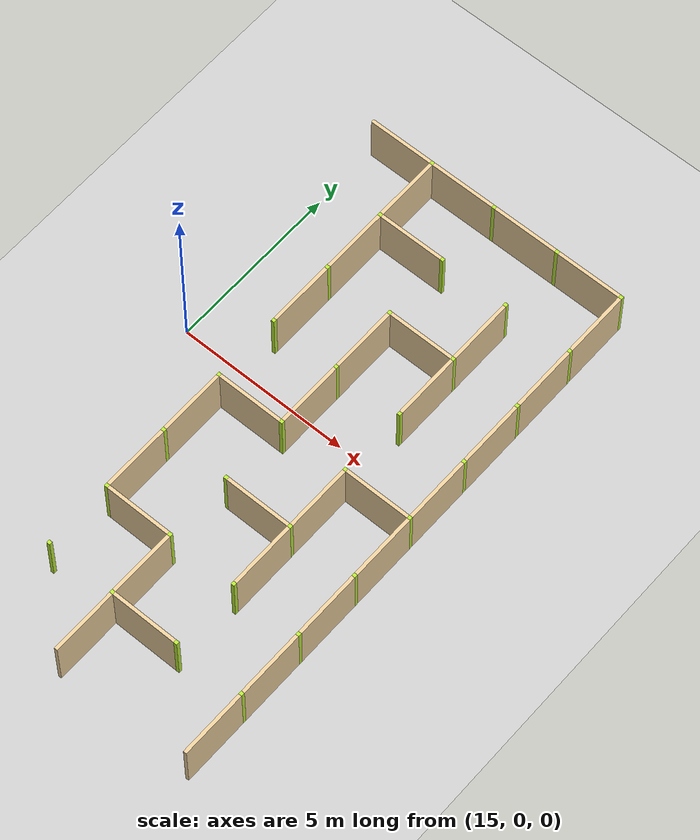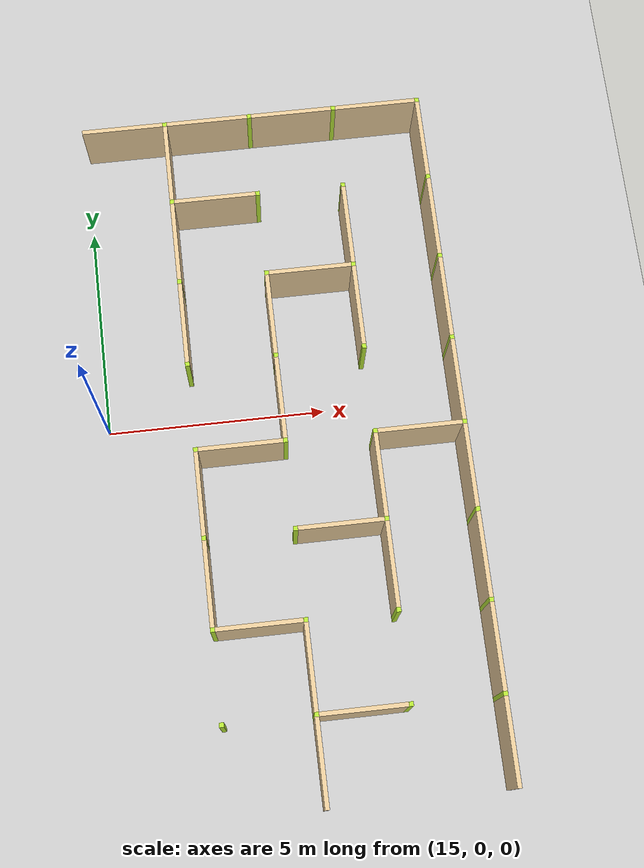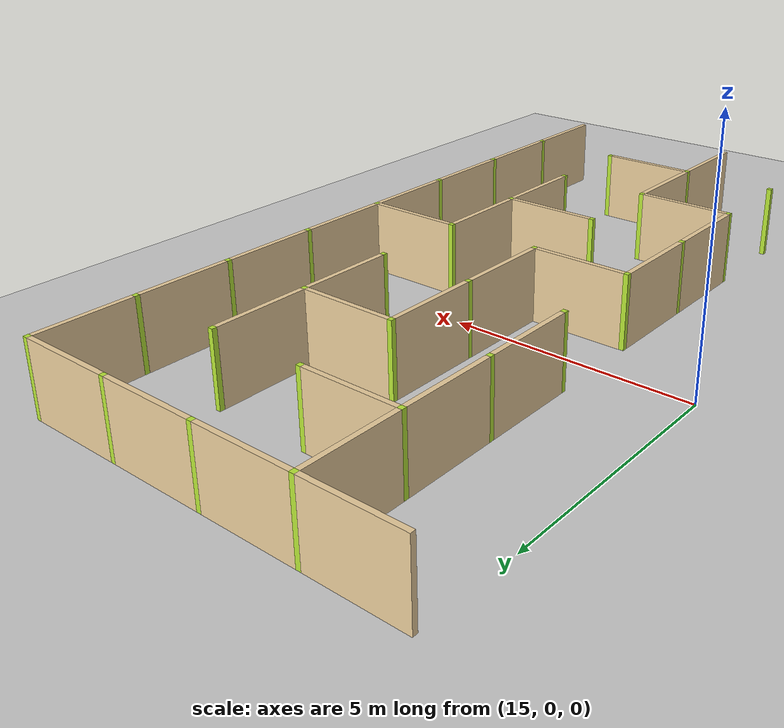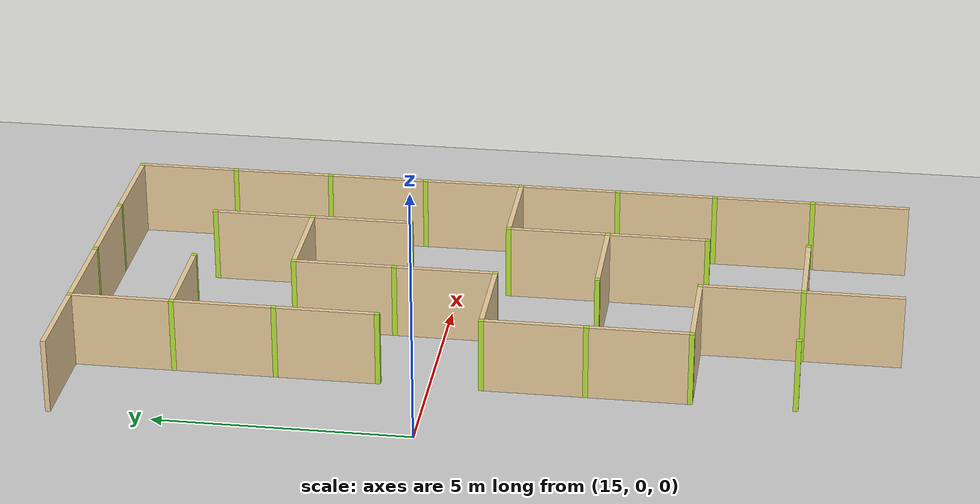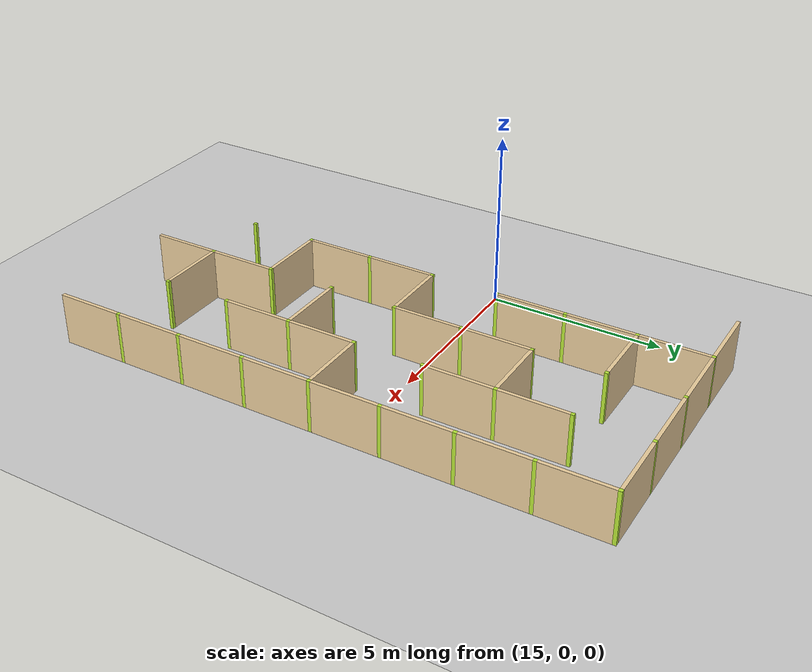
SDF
<sdf version="1.4">
 <world name="maze_world">
  <model name="ground">
   <static>true</static>
   <link name="ground_link">
    <collision name="collision1"><geometry><plane><normal>0 0 1</normal></plane></geometry></collision>
    <visual name="visual1"><geometry><plane><normal>0 0 1</normal><size>100 100</size></plane></geometry></visual>
   </link>
  </model>
  <model name="Untitled">
   <link name="Wall_11_0_h">
    <collision name="Wall_0_Collision">
     <geometry><box><size>1.9 0.1 1.5</size></box></geometry>
     <pose>0 0 0.75 0 -0 0</pose>
    </collision>
    <visual name="Wall_0_Visual">
     <pose>0 0 0.75 0 -0 0</pose>
     <geometry><box><size>1.9 0.1 1.5</size></box></geometry>
     <material>
      <script><uri>file://media/materials/scripts/gazebo.material</uri><name>Gazebo/Grey</name></script>
      <ambient>0.921569 0.807843 0.615686 1</ambient>
     </material>
     <meta><layer>0</layer></meta>
    </visual>
    <pose>16.0 7 0 0 -0 0</pose>
    <sensor name="my_contact" type="contact">
     <contact><collision>box_collision</collision><topic>/rover_collision</topic></contact>
    </sensor>
   </link>
   <link name="Wall_12_0_h">
    <collision name="Wall_0_Collision">
     <geometry><box><size>1.9 0.1 1.5</size></box></geometry>
     <pose>0 0 0.75 0 -0 0</pose>
    </collision>
    <visual name="Wall_0_Visual">
     <pose>0 0 0.75 0 -0 0</pose>
     <geometry><box><size>1.9 0.1 1.5</size></box></geometry>
     <material>
      <script><uri>file://media/materials/scripts/gazebo.material</uri><name>Gazebo/Grey</name></script>
      <ambient>0.921569 0.807843 0.615686 1</ambient>
     </material>
     <meta><layer>0</layer></meta>
    </visual>
    <pose>18.0 7 0 0 -0 0</pose>
    <sensor name="my_contact" type="contact">
     <contact><collision>box_collision</collision><topic>/rover_collision</topic></contact>
    </sensor>
   </link>
   <link name="Wall_12_0_v">
    <collision name="Wall_0_Collision">
     <geometry><box><size>1.9 0.1 1.5</size></box></geometry>
     <pose>0 0 0.75 0 -0 0</pose>
    </collision>
    <visual name="Wall_0_Visual">
     <pose>0 0 0.75 0 -0 0</pose>
     <geometry><box><size>1.9 0.1 1.5</size></box></geometry>
     <material>
      <script><uri>file://media/materials/scripts/gazebo.material</uri><name>Gazebo/Grey</name></script>
      <ambient>0.921569 0.807843 0.615686 1</ambient>
     </material>
     <meta><layer>0</layer></meta>
    </visual>
    <pose>17 6.0 0 0 -0 1.5708</pose>
    <sensor name="my_contact" type="contact">
     <contact><collision>box_collision</collision><topic>/rover_collision</topic></contact>
    </sensor>
   </link>
   <link name="Joint_17_7">
    <collision name="Wall_2_Collision">
     <geometry><box><size>0.1 0.1 1.5</size></box></geometry>
     <pose>0 0 0.75 0 -0 0</pose>
    </collision>
    <visual name="Wall_2_Visual">
     <pose>0 0 0.75 0 -0 0</pose>
     <geometry><box><size>0.1 0.1 1.5</size></box></geometry>
     <material>
      <script><uri>file://media/materials/scripts/gazebo.material</uri><name>Gazebo/Grey</name></script>
      <ambient>0.721569 0.907843 0.215686 1</ambient>
     </material>
     <meta><layer>0</layer></meta>
    </visual>
    <pose>17 7 0 0 -0 0</pose>
    <sensor name="my_contact" type="contact">
     <contact><collision>box_collision</collision><topic>/rover_collision</topic></contact>
    </sensor>
   </link>
   <link name="Wall_13_0_h">
    <collision name="Wall_0_Collision">
     <geometry><box><size>1.9 0.1 1.5</size></box></geometry>
     <pose>0 0 0.75 0 -0 0</pose>
    </collision>
    <visual name="Wall_0_Visual">
     <pose>0 0 0.75 0 -0 0</pose>
     <geometry><box><size>1.9 0.1 1.5</size></box></geometry>
     <material>
      <script><uri>file://media/materials/scripts/gazebo.material</uri><name>Gazebo/Grey</name></script>
      <ambient>0.921569 0.807843 0.615686 1</ambient>
     </material>
     <meta><layer>0</layer></meta>
    </visual>
    <pose>20.0 7 0 0 -0 0</pose>
    <sensor name="my_contact" type="contact">
     <contact><collision>box_collision</collision><topic>/rover_collision</topic></contact>
    </sensor>
   </link>
   <link name="Joint_19_7">
    <collision name="Wall_2_Collision">
     <geometry><box><size>0.1 0.1 1.5</size></box></geometry>
     <pose>0 0 0.75 0 -0 0</pose>
    </collision>
    <visual name="Wall_2_Visual">
     <pose>0 0 0.75 0 -0 0</pose>
     <geometry><box><size>0.1 0.1 1.5</size></box></geometry>
     <material>
      <script><uri>file://media/materials/scripts/gazebo.material</uri><name>Gazebo/Grey</name></script>
      <ambient>0.721569 0.907843 0.215686 1</ambient>
     </material>
     <meta><layer>0</layer></meta>
    </visual>
    <pose>19 7 0 0 -0 0</pose>
    <sensor name="my_contact" type="contact">
     <contact><collision>box_collision</collision><topic>/rover_collision</topic></contact>
    </sensor>
   </link>
   <link name="Wall_14_0_h">
    <collision name="Wall_0_Collision">
     <geometry><box><size>1.9 0.1 1.5</size></box></geometry>
     <pose>0 0 0.75 0 -0 0</pose>
    </collision>
    <visual name="Wall_0_Visual">
     <pose>0 0 0.75 0 -0 0</pose>
     <geometry><box><size>1.9 0.1 1.5</size></box></geometry>
     <material>
      <script><uri>file://media/materials/scripts/gazebo.material</uri><name>Gazebo/Grey</name></script>
      <ambient>0.921569 0.807843 0.615686 1</ambient>
     </material>
     <meta><layer>0</layer></meta>
    </visual>
    <pose>22.0 7 0 0 -0 0</pose>
    <sensor name="my_contact" type="contact">
     <contact><collision>box_collision</collision><topic>/rover_collision</topic></contact>
    </sensor>
   </link>
   <link name="Joint_21_7">
    <collision name="Wall_2_Collision">
     <geometry><box><size>0.1 0.1 1.5</size></box></geometry>
     <pose>0 0 0.75 0 -0 0</pose>
    </collision>
    <visual name="Wall_2_Visual">
     <pose>0 0 0.75 0 -0 0</pose>
     <geometry><box><size>0.1 0.1 1.5</size></box></geometry>
     <material>
      <script><uri>file://media/materials/scripts/gazebo.material</uri><name>Gazebo/Grey</name></script>
      <ambient>0.721569 0.907843 0.215686 1</ambient>
     </material>
     <meta><layer>0</layer></meta>
    </visual>
    <pose>21 7 0 0 -0 0</pose>
    <sensor name="my_contact" type="contact">
     <contact><collision>box_collision</collision><topic>/rover_collision</topic></contact>
    </sensor>
   </link>
   <link name="Wall_15_0_v">
    <collision name="Wall_0_Collision">
     <geometry><box><size>1.9 0.1 1.5</size></box></geometry>
     <pose>0 0 0.75 0 -0 0</pose>
    </collision>
    <visual name="Wall_0_Visual">
     <pose>0 0 0.75 0 -0 0</pose>
     <geometry><box><size>1.9 0.1 1.5</size></box></geometry>
     <material>
      <script><uri>file://media/materials/scripts/gazebo.material</uri><name>Gazebo/Grey</name></script>
      <ambient>0.921569 0.807843 0.615686 1</ambient>
     </material>
     <meta><layer>0</layer></meta>
    </visual>
    <pose>23 6.0 0 0 -0 1.5708</pose>
    <sensor name="my_contact" type="contact">
     <contact><collision>box_collision</collision><topic>/rover_collision</topic></contact>
    </sensor>
   </link>
   <link name="Joint_23_7">
    <collision name="Wall_2_Collision">
     <geometry><box><size>0.1 0.1 1.5</size></box></geometry>
     <pose>0 0 0.75 0 -0 0</pose>
    </collision>
    <visual name="Wall_2_Visual">
     <pose>0 0 0.75 0 -0 0</pose>
     <geometry><box><size>0.1 0.1 1.5</size></box></geometry>
     <material>
      <script><uri>file://media/materials/scripts/gazebo.material</uri><name>Gazebo/Grey</name></script>
      <ambient>0.721569 0.907843 0.215686 1</ambient>
     </material>
     <meta><layer>0</layer></meta>
    </visual>
    <pose>23 7 0 0 -0 0</pose>
    <sensor name="my_contact" type="contact">
     <contact><collision>box_collision</collision><topic>/rover_collision</topic></contact>
    </sensor>
   </link>
   <link name="Wall_12_1_h">
    <collision name="Wall_0_Collision">
     <geometry><box><size>1.9 0.1 1.5</size></box></geometry>
     <pose>0 0 0.75 0 -0 0</pose>
    </collision>
    <visual name="Wall_0_Visual">
     <pose>0 0 0.75 0 -0 0</pose>
     <geometry><box><size>1.9 0.1 1.5</size></box></geometry>
     <material>
      <script><uri>file://media/materials/scripts/gazebo.material</uri><name>Gazebo/Grey</name></script>
      <ambient>0.921569 0.807843 0.615686 1</ambient>
     </material>
     <meta><layer>0</layer></meta>
    </visual>
    <pose>18.0 5 0 0 -0 0</pose>
    <sensor name="my_contact" type="contact">
     <contact><collision>box_collision</collision><topic>/rover_collision</topic></contact>
    </sensor>
   </link>
   <link name="Wall_12_1_v">
    <collision name="Wall_0_Collision">
     <geometry><box><size>1.9 0.1 1.5</size></box></geometry>
     <pose>0 0 0.75 0 -0 0</pose>
    </collision>
    <visual name="Wall_0_Visual">
     <pose>0 0 0.75 0 -0 0</pose>
     <geometry><box><size>1.9 0.1 1.5</size></box></geometry>
     <material>
      <script><uri>file://media/materials/scripts/gazebo.material</uri><name>Gazebo/Grey</name></script>
      <ambient>0.921569 0.807843 0.615686 1</ambient>
     </material>
     <meta><layer>0</layer></meta>
    </visual>
    <pose>17 4.0 0 0 -0 1.5708</pose>
    <sensor name="my_contact" type="contact">
     <contact><collision>box_collision</collision><topic>/rover_collision</topic></contact>
    </sensor>
   </link>
   <link name="Joint_17_5">
    <collision name="Wall_2_Collision">
     <geometry><box><size>0.1 0.1 1.5</size></box></geometry>
     <pose>0 0 0.75 0 -0 0</pose>
    </collision>
    <visual name="Wall_2_Visual">
     <pose>0 0 0.75 0 -0 0</pose>
     <geometry><box><size>0.1 0.1 1.5</size></box></geometry>
     <material>
      <script><uri>file://media/materials/scripts/gazebo.material</uri><name>Gazebo/Grey</name></script>
      <ambient>0.721569 0.907843 0.215686 1</ambient>
     </material>
     <meta><layer>0</layer></meta>
    </visual>
    <pose>17 5 0 0 -0 0</pose>
    <sensor name="my_contact" type="contact">
     <contact><collision>box_collision</collision><topic>/rover_collision</topic></contact>
    </sensor>
   </link>
   <link name="Joint_19_5">
    <collision name="Wall_2_Collision">
     <geometry><box><size>0.1 0.1 1.5</size></box></geometry>
     <pose>0 0 0.75 0 -0 0</pose>
    </collision>
    <visual name="Wall_2_Visual">
     <pose>0 0 0.75 0 -0 0</pose>
     <geometry><box><size>0.1 0.1 1.5</size></box></geometry>
     <material>
      <script><uri>file://media/materials/scripts/gazebo.material</uri><name>Gazebo/Grey</name></script>
      <ambient>0.721569 0.907843 0.215686 1</ambient>
     </material>
     <meta><layer>0</layer></meta>
    </visual>
    <pose>19 5 0 0 -0 0</pose>
    <sensor name="my_contact" type="contact">
     <contact><collision>box_collision</collision><topic>/rover_collision</topic></contact>
    </sensor>
   </link>
   <link name="Wall_14_1_v">
    <collision name="Wall_0_Collision">
     <geometry><box><size>1.9 0.1 1.5</size></box></geometry>
     <pose>0 0 0.75 0 -0 0</pose>
    </collision>
    <visual name="Wall_0_Visual">
     <pose>0 0 0.75 0 -0 0</pose>
     <geometry><box><size>1.9 0.1 1.5</size></box></geometry>
     <material>
      <script><uri>file://media/materials/scripts/gazebo.material</uri><name>Gazebo/Grey</name></script>
      <ambient>0.921569 0.807843 0.615686 1</ambient>
     </material>
     <meta><layer>0</layer></meta>
    </visual>
    <pose>21 4.0 0 0 -0 1.5708</pose>
    <sensor name="my_contact" type="contact">
     <contact><collision>box_collision</collision><topic>/rover_collision</topic></contact>
    </sensor>
   </link>
   <link name="Joint_21_5">
    <collision name="Wall_2_Collision">
     <geometry><box><size>0.1 0.1 1.5</size></box></geometry>
     <pose>0 0 0.75 0 -0 0</pose>
    </collision>
    <visual name="Wall_2_Visual">
     <pose>0 0 0.75 0 -0 0</pose>
     <geometry><box><size>0.1 0.1 1.5</size></box></geometry>
     <material>
      <script><uri>file://media/materials/scripts/gazebo.material</uri><name>Gazebo/Grey</name></script>
      <ambient>0.721569 0.907843 0.215686 1</ambient>
     </material>
     <meta><layer>0</layer></meta>
    </visual>
    <pose>21 5 0 0 -0 0</pose>
    <sensor name="my_contact" type="contact">
     <contact><collision>box_collision</collision><topic>/rover_collision</topic></contact>
    </sensor>
   </link>
   <link name="Wall_15_1_v">
    <collision name="Wall_0_Collision">
     <geometry><box><size>1.9 0.1 1.5</size></box></geometry>
     <pose>0 0 0.75 0 -0 0</pose>
    </collision>
    <visual name="Wall_0_Visual">
     <pose>0 0 0.75 0 -0 0</pose>
     <geometry><box><size>1.9 0.1 1.5</size></box></geometry>
     <material>
      <script><uri>file://media/materials/scripts/gazebo.material</uri><name>Gazebo/Grey</name></script>
      <ambient>0.921569 0.807843 0.615686 1</ambient>
     </material>
     <meta><layer>0</layer></meta>
    </visual>
    <pose>23 4.0 0 0 -0 1.5708</pose>
    <sensor name="my_contact" type="contact">
     <contact><collision>box_collision</collision><topic>/rover_collision</topic></contact>
    </sensor>
   </link>
   <link name="Joint_23_5">
    <collision name="Wall_2_Collision">
     <geometry><box><size>0.1 0.1 1.5</size></box></geometry>
     <pose>0 0 0.75 0 -0 0</pose>
    </collision>
    <visual name="Wall_2_Visual">
     <pose>0 0 0.75 0 -0 0</pose>
     <geometry><box><size>0.1 0.1 1.5</size></box></geometry>
     <material>
      <script><uri>file://media/materials/scripts/gazebo.material</uri><name>Gazebo/Grey</name></script>
      <ambient>0.721569 0.907843 0.215686 1</ambient>
     </material>
     <meta><layer>0</layer></meta>
    </visual>
    <pose>23 5 0 0 -0 0</pose>
    <sensor name="my_contact" type="contact">
     <contact><collision>box_collision</collision><topic>/rover_collision</topic></contact>
    </sensor>
   </link>
   <link name="Wall_12_2_v">
    <collision name="Wall_0_Collision">
     <geometry><box><size>1.9 0.1 1.5</size></box></geometry>
     <pose>0 0 0.75 0 -0 0</pose>
    </collision>
    <visual name="Wall_0_Visual">
     <pose>0 0 0.75 0 -0 0</pose>
     <geometry><box><size>1.9 0.1 1.5</size></box></geometry>
     <material>
      <script><uri>file://media/materials/scripts/gazebo.material</uri><name>Gazebo/Grey</name></script>
      <ambient>0.921569 0.807843 0.615686 1</ambient>
     </material>
     <meta><layer>0</layer></meta>
    </visual>
    <pose>17 2.0 0 0 -0 1.5708</pose>
    <sensor name="my_contact" type="contact">
     <contact><collision>box_collision</collision><topic>/rover_collision</topic></contact>
    </sensor>
   </link>
   <link name="Joint_17_3">
    <collision name="Wall_2_Collision">
     <geometry><box><size>0.1 0.1 1.5</size></box></geometry>
     <pose>0 0 0.75 0 -0 0</pose>
    </collision>
    <visual name="Wall_2_Visual">
     <pose>0 0 0.75 0 -0 0</pose>
     <geometry><box><size>0.1 0.1 1.5</size></box></geometry>
     <material>
      <script><uri>file://media/materials/scripts/gazebo.material</uri><name>Gazebo/Grey</name></script>
      <ambient>0.721569 0.907843 0.215686 1</ambient>
     </material>
     <meta><layer>0</layer></meta>
    </visual>
    <pose>17 3 0 0 -0 0</pose>
    <sensor name="my_contact" type="contact">
     <contact><collision>box_collision</collision><topic>/rover_collision</topic></contact>
    </sensor>
   </link>
   <link name="Wall_13_2_h">
    <collision name="Wall_0_Collision">
     <geometry><box><size>1.9 0.1 1.5</size></box></geometry>
     <pose>0 0 0.75 0 -0 0</pose>
    </collision>
    <visual name="Wall_0_Visual">
     <pose>0 0 0.75 0 -0 0</pose>
     <geometry><box><size>1.9 0.1 1.5</size></box></geometry>
     <material>
      <script><uri>file://media/materials/scripts/gazebo.material</uri><name>Gazebo/Grey</name></script>
      <ambient>0.921569 0.807843 0.615686 1</ambient>
     </material>
     <meta><layer>0</layer></meta>
    </visual>
    <pose>20.0 3 0 0 -0 0</pose>
    <sensor name="my_contact" type="contact">
     <contact><collision>box_collision</collision><topic>/rover_collision</topic></contact>
    </sensor>
   </link>
   <link name="Wall_13_2_v">
    <collision name="Wall_0_Collision">
     <geometry><box><size>1.9 0.1 1.5</size></box></geometry>
     <pose>0 0 0.75 0 -0 0</pose>
    </collision>
    <visual name="Wall_0_Visual">
     <pose>0 0 0.75 0 -0 0</pose>
     <geometry><box><size>1.9 0.1 1.5</size></box></geometry>
     <material>
      <script><uri>file://media/materials/scripts/gazebo.material</uri><name>Gazebo/Grey</name></script>
      <ambient>0.921569 0.807843 0.615686 1</ambient>
     </material>
     <meta><layer>0</layer></meta>
    </visual>
    <pose>19 2.0 0 0 -0 1.5708</pose>
    <sensor name="my_contact" type="contact">
     <contact><collision>box_collision</collision><topic>/rover_collision</topic></contact>
    </sensor>
   </link>
   <link name="Joint_19_3">
    <collision name="Wall_2_Collision">
     <geometry><box><size>0.1 0.1 1.5</size></box></geometry>
     <pose>0 0 0.75 0 -0 0</pose>
    </collision>
    <visual name="Wall_2_Visual">
     <pose>0 0 0.75 0 -0 0</pose>
     <geometry><box><size>0.1 0.1 1.5</size></box></geometry>
     <material>
      <script><uri>file://media/materials/scripts/gazebo.material</uri><name>Gazebo/Grey</name></script>
      <ambient>0.721569 0.907843 0.215686 1</ambient>
     </material>
     <meta><layer>0</layer></meta>
    </visual>
    <pose>19 3 0 0 -0 0</pose>
    <sensor name="my_contact" type="contact">
     <contact><collision>box_collision</collision><topic>/rover_collision</topic></contact>
    </sensor>
   </link>
   <link name="Wall_14_2_v">
    <collision name="Wall_0_Collision">
     <geometry><box><size>1.9 0.1 1.5</size></box></geometry>
     <pose>0 0 0.75 0 -0 0</pose>
    </collision>
    <visual name="Wall_0_Visual">
     <pose>0 0 0.75 0 -0 0</pose>
     <geometry><box><size>1.9 0.1 1.5</size></box></geometry>
     <material>
      <script><uri>file://media/materials/scripts/gazebo.material</uri><name>Gazebo/Grey</name></script>
      <ambient>0.921569 0.807843 0.615686 1</ambient>
     </material>
     <meta><layer>0</layer></meta>
    </visual>
    <pose>21 2.0 0 0 -0 1.5708</pose>
    <sensor name="my_contact" type="contact">
     <contact><collision>box_collision</collision><topic>/rover_collision</topic></contact>
    </sensor>
   </link>
   <link name="Joint_21_3">
    <collision name="Wall_2_Collision">
     <geometry><box><size>0.1 0.1 1.5</size></box></geometry>
     <pose>0 0 0.75 0 -0 0</pose>
    </collision>
    <visual name="Wall_2_Visual">
     <pose>0 0 0.75 0 -0 0</pose>
     <geometry><box><size>0.1 0.1 1.5</size></box></geometry>
     <material>
      <script><uri>file://media/materials/scripts/gazebo.material</uri><name>Gazebo/Grey</name></script>
      <ambient>0.721569 0.907843 0.215686 1</ambient>
     </material>
     <meta><layer>0</layer></meta>
    </visual>
    <pose>21 3 0 0 -0 0</pose>
    <sensor name="my_contact" type="contact">
     <contact><collision>box_collision</collision><topic>/rover_collision</topic></contact>
    </sensor>
   </link>
   <link name="Wall_15_2_v">
    <collision name="Wall_0_Collision">
     <geometry><box><size>1.9 0.1 1.5</size></box></geometry>
     <pose>0 0 0.75 0 -0 0</pose>
    </collision>
    <visual name="Wall_0_Visual">
     <pose>0 0 0.75 0 -0 0</pose>
     <geometry><box><size>1.9 0.1 1.5</size></box></geometry>
     <material>
      <script><uri>file://media/materials/scripts/gazebo.material</uri><name>Gazebo/Grey</name></script>
      <ambient>0.921569 0.807843 0.615686 1</ambient>
     </material>
     <meta><layer>0</layer></meta>
    </visual>
    <pose>23 2.0 0 0 -0 1.5708</pose>
    <sensor name="my_contact" type="contact">
     <contact><collision>box_collision</collision><topic>/rover_collision</topic></contact>
    </sensor>
   </link>
   <link name="Joint_23_3">
    <collision name="Wall_2_Collision">
     <geometry><box><size>0.1 0.1 1.5</size></box></geometry>
     <pose>0 0 0.75 0 -0 0</pose>
    </collision>
    <visual name="Wall_2_Visual">
     <pose>0 0 0.75 0 -0 0</pose>
     <geometry><box><size>0.1 0.1 1.5</size></box></geometry>
     <material>
      <script><uri>file://media/materials/scripts/gazebo.material</uri><name>Gazebo/Grey</name></script>
      <ambient>0.721569 0.907843 0.215686 1</ambient>
     </material>
     <meta><layer>0</layer></meta>
    </visual>
    <pose>23 3 0 0 -0 0</pose>
    <sensor name="my_contact" type="contact">
     <contact><collision>box_collision</collision><topic>/rover_collision</topic></contact>
    </sensor>
   </link>
   <link name="Joint_17_1">
    <collision name="Wall_2_Collision">
     <geometry><box><size>0.1 0.1 1.5</size></box></geometry>
     <pose>0 0 0.75 0 -0 0</pose>
    </collision>
    <visual name="Wall_2_Visual">
     <pose>0 0 0.75 0 -0 0</pose>
     <geometry><box><size>0.1 0.1 1.5</size></box></geometry>
     <material>
      <script><uri>file://media/materials/scripts/gazebo.material</uri><name>Gazebo/Grey</name></script>
      <ambient>0.721569 0.907843 0.215686 1</ambient>
     </material>
     <meta><layer>0</layer></meta>
    </visual>
    <pose>17 1 0 0 -0 0</pose>
    <sensor name="my_contact" type="contact">
     <contact><collision>box_collision</collision><topic>/rover_collision</topic></contact>
    </sensor>
   </link>
   <link name="Wall_13_3_v">
    <collision name="Wall_0_Collision">
     <geometry><box><size>1.9 0.1 1.5</size></box></geometry>
     <pose>0 0 0.75 0 -0 0</pose>
    </collision>
    <visual name="Wall_0_Visual">
     <pose>0 0 0.75 0 -0 0</pose>
     <geometry><box><size>1.9 0.1 1.5</size></box></geometry>
     <material>
      <script><uri>file://media/materials/scripts/gazebo.material</uri><name>Gazebo/Grey</name></script>
      <ambient>0.921569 0.807843 0.615686 1</ambient>
     </material>
     <meta><layer>0</layer></meta>
    </visual>
    <pose>19 -0.0 0 0 -0 1.5708</pose>
    <sensor name="my_contact" type="contact">
     <contact><collision>box_collision</collision><topic>/rover_collision</topic></contact>
    </sensor>
   </link>
   <link name="Joint_19_1">
    <collision name="Wall_2_Collision">
     <geometry><box><size>0.1 0.1 1.5</size></box></geometry>
     <pose>0 0 0.75 0 -0 0</pose>
    </collision>
    <visual name="Wall_2_Visual">
     <pose>0 0 0.75 0 -0 0</pose>
     <geometry><box><size>0.1 0.1 1.5</size></box></geometry>
     <material>
      <script><uri>file://media/materials/scripts/gazebo.material</uri><name>Gazebo/Grey</name></script>
      <ambient>0.721569 0.907843 0.215686 1</ambient>
     </material>
     <meta><layer>0</layer></meta>
    </visual>
    <pose>19 1 0 0 -0 0</pose>
    <sensor name="my_contact" type="contact">
     <contact><collision>box_collision</collision><topic>/rover_collision</topic></contact>
    </sensor>
   </link>
   <link name="Joint_21_1">
    <collision name="Wall_2_Collision">
     <geometry><box><size>0.1 0.1 1.5</size></box></geometry>
     <pose>0 0 0.75 0 -0 0</pose>
    </collision>
    <visual name="Wall_2_Visual">
     <pose>0 0 0.75 0 -0 0</pose>
     <geometry><box><size>0.1 0.1 1.5</size></box></geometry>
     <material>
      <script><uri>file://media/materials/scripts/gazebo.material</uri><name>Gazebo/Grey</name></script>
      <ambient>0.721569 0.907843 0.215686 1</ambient>
     </material>
     <meta><layer>0</layer></meta>
    </visual>
    <pose>21 1 0 0 -0 0</pose>
    <sensor name="my_contact" type="contact">
     <contact><collision>box_collision</collision><topic>/rover_collision</topic></contact>
    </sensor>
   </link>
   <link name="Wall_15_3_v">
    <collision name="Wall_0_Collision">
     <geometry><box><size>1.9 0.1 1.5</size></box></geometry>
     <pose>0 0 0.75 0 -0 0</pose>
    </collision>
    <visual name="Wall_0_Visual">
     <pose>0 0 0.75 0 -0 0</pose>
     <geometry><box><size>1.9 0.1 1.5</size></box></geometry>
     <material>
      <script><uri>file://media/materials/scripts/gazebo.material</uri><name>Gazebo/Grey</name></script>
      <ambient>0.921569 0.807843 0.615686 1</ambient>
     </material>
     <meta><layer>0</layer></meta>
    </visual>
    <pose>23 -0.0 0 0 -0 1.5708</pose>
    <sensor name="my_contact" type="contact">
     <contact><collision>box_collision</collision><topic>/rover_collision</topic></contact>
    </sensor>
   </link>
   <link name="Joint_23_1">
    <collision name="Wall_2_Collision">
     <geometry><box><size>0.1 0.1 1.5</size></box></geometry>
     <pose>0 0 0.75 0 -0 0</pose>
    </collision>
    <visual name="Wall_2_Visual">
     <pose>0 0 0.75 0 -0 0</pose>
     <geometry><box><size>0.1 0.1 1.5</size></box></geometry>
     <material>
      <script><uri>file://media/materials/scripts/gazebo.material</uri><name>Gazebo/Grey</name></script>
      <ambient>0.721569 0.907843 0.215686 1</ambient>
     </material>
     <meta><layer>0</layer></meta>
    </visual>
    <pose>23 1 0 0 -0 0</pose>
    <sensor name="my_contact" type="contact">
     <contact><collision>box_collision</collision><topic>/rover_collision</topic></contact>
    </sensor>
   </link>
   <link name="Wall_12_4_h">
    <collision name="Wall_0_Collision">
     <geometry><box><size>1.9 0.1 1.5</size></box></geometry>
     <pose>0 0 0.75 0 -0 0</pose>
    </collision>
    <visual name="Wall_0_Visual">
     <pose>0 0 0.75 0 -0 0</pose>
     <geometry><box><size>1.9 0.1 1.5</size></box></geometry>
     <material>
      <script><uri>file://media/materials/scripts/gazebo.material</uri><name>Gazebo/Grey</name></script>
      <ambient>0.921569 0.807843 0.615686 1</ambient>
     </material>
     <meta><layer>0</layer></meta>
    </visual>
    <pose>18.0 -1 0 0 -0 0</pose>
    <sensor name="my_contact" type="contact">
     <contact><collision>box_collision</collision><topic>/rover_collision</topic></contact>
    </sensor>
   </link>
   <link name="Wall_12_4_v">
    <collision name="Wall_0_Collision">
     <geometry><box><size>1.9 0.1 1.5</size></box></geometry>
     <pose>0 0 0.75 0 -0 0</pose>
    </collision>
    <visual name="Wall_0_Visual">
     <pose>0 0 0.75 0 -0 0</pose>
     <geometry><box><size>1.9 0.1 1.5</size></box></geometry>
     <material>
      <script><uri>file://media/materials/scripts/gazebo.material</uri><name>Gazebo/Grey</name></script>
      <ambient>0.921569 0.807843 0.615686 1</ambient>
     </material>
     <meta><layer>0</layer></meta>
    </visual>
    <pose>17 -2.0 0 0 -0 1.5708</pose>
    <sensor name="my_contact" type="contact">
     <contact><collision>box_collision</collision><topic>/rover_collision</topic></contact>
    </sensor>
   </link>
   <link name="Joint_17_-1">
    <collision name="Wall_2_Collision">
     <geometry><box><size>0.1 0.1 1.5</size></box></geometry>
     <pose>0 0 0.75 0 -0 0</pose>
    </collision>
    <visual name="Wall_2_Visual">
     <pose>0 0 0.75 0 -0 0</pose>
     <geometry><box><size>0.1 0.1 1.5</size></box></geometry>
     <material>
      <script><uri>file://media/materials/scripts/gazebo.material</uri><name>Gazebo/Grey</name></script>
      <ambient>0.721569 0.907843 0.215686 1</ambient>
     </material>
     <meta><layer>0</layer></meta>
    </visual>
    <pose>17 -1 0 0 -0 0</pose>
    <sensor name="my_contact" type="contact">
     <contact><collision>box_collision</collision><topic>/rover_collision</topic></contact>
    </sensor>
   </link>
   <link name="Joint_19_-1">
    <collision name="Wall_2_Collision">
     <geometry><box><size>0.1 0.1 1.5</size></box></geometry>
     <pose>0 0 0.75 0 -0 0</pose>
    </collision>
    <visual name="Wall_2_Visual">
     <pose>0 0 0.75 0 -0 0</pose>
     <geometry><box><size>0.1 0.1 1.5</size></box></geometry>
     <material>
      <script><uri>file://media/materials/scripts/gazebo.material</uri><name>Gazebo/Grey</name></script>
      <ambient>0.721569 0.907843 0.215686 1</ambient>
     </material>
     <meta><layer>0</layer></meta>
    </visual>
    <pose>19 -1 0 0 -0 0</pose>
    <sensor name="my_contact" type="contact">
     <contact><collision>box_collision</collision><topic>/rover_collision</topic></contact>
    </sensor>
   </link>
   <link name="Wall_14_4_h">
    <collision name="Wall_0_Collision">
     <geometry><box><size>1.9 0.1 1.5</size></box></geometry>
     <pose>0 0 0.75 0 -0 0</pose>
    </collision>
    <visual name="Wall_0_Visual">
     <pose>0 0 0.75 0 -0 0</pose>
     <geometry><box><size>1.9 0.1 1.5</size></box></geometry>
     <material>
      <script><uri>file://media/materials/scripts/gazebo.material</uri><name>Gazebo/Grey</name></script>
      <ambient>0.921569 0.807843 0.615686 1</ambient>
     </material>
     <meta><layer>0</layer></meta>
    </visual>
    <pose>22.0 -1 0 0 -0 0</pose>
    <sensor name="my_contact" type="contact">
     <contact><collision>box_collision</collision><topic>/rover_collision</topic></contact>
    </sensor>
   </link>
   <link name="Wall_14_4_v">
    <collision name="Wall_0_Collision">
     <geometry><box><size>1.9 0.1 1.5</size></box></geometry>
     <pose>0 0 0.75 0 -0 0</pose>
    </collision>
    <visual name="Wall_0_Visual">
     <pose>0 0 0.75 0 -0 0</pose>
     <geometry><box><size>1.9 0.1 1.5</size></box></geometry>
     <material>
      <script><uri>file://media/materials/scripts/gazebo.material</uri><name>Gazebo/Grey</name></script>
      <ambient>0.921569 0.807843 0.615686 1</ambient>
     </material>
     <meta><layer>0</layer></meta>
    </visual>
    <pose>21 -2.0 0 0 -0 1.5708</pose>
    <sensor name="my_contact" type="contact">
     <contact><collision>box_collision</collision><topic>/rover_collision</topic></contact>
    </sensor>
   </link>
   <link name="Joint_21_-1">
    <collision name="Wall_2_Collision">
     <geometry><box><size>0.1 0.1 1.5</size></box></geometry>
     <pose>0 0 0.75 0 -0 0</pose>
    </collision>
    <visual name="Wall_2_Visual">
     <pose>0 0 0.75 0 -0 0</pose>
     <geometry><box><size>0.1 0.1 1.5</size></box></geometry>
     <material>
      <script><uri>file://media/materials/scripts/gazebo.material</uri><name>Gazebo/Grey</name></script>
      <ambient>0.721569 0.907843 0.215686 1</ambient>
     </material>
     <meta><layer>0</layer></meta>
    </visual>
    <pose>21 -1 0 0 -0 0</pose>
    <sensor name="my_contact" type="contact">
     <contact><collision>box_collision</collision><topic>/rover_collision</topic></contact>
    </sensor>
   </link>
   <link name="Wall_15_4_v">
    <collision name="Wall_0_Collision">
     <geometry><box><size>1.9 0.1 1.5</size></box></geometry>
     <pose>0 0 0.75 0 -0 0</pose>
    </collision>
    <visual name="Wall_0_Visual">
     <pose>0 0 0.75 0 -0 0</pose>
     <geometry><box><size>1.9 0.1 1.5</size></box></geometry>
     <material>
      <script><uri>file://media/materials/scripts/gazebo.material</uri><name>Gazebo/Grey</name></script>
      <ambient>0.921569 0.807843 0.615686 1</ambient>
     </material>
     <meta><layer>0</layer></meta>
    </visual>
    <pose>23 -2.0 0 0 -0 1.5708</pose>
    <sensor name="my_contact" type="contact">
     <contact><collision>box_collision</collision><topic>/rover_collision</topic></contact>
    </sensor>
   </link>
   <link name="Joint_23_-1">
    <collision name="Wall_2_Collision">
     <geometry><box><size>0.1 0.1 1.5</size></box></geometry>
     <pose>0 0 0.75 0 -0 0</pose>
    </collision>
    <visual name="Wall_2_Visual">
     <pose>0 0 0.75 0 -0 0</pose>
     <geometry><box><size>0.1 0.1 1.5</size></box></geometry>
     <material>
      <script><uri>file://media/materials/scripts/gazebo.material</uri><name>Gazebo/Grey</name></script>
      <ambient>0.721569 0.907843 0.215686 1</ambient>
     </material>
     <meta><layer>0</layer></meta>
    </visual>
    <pose>23 -1 0 0 -0 0</pose>
    <sensor name="my_contact" type="contact">
     <contact><collision>box_collision</collision><topic>/rover_collision</topic></contact>
    </sensor>
   </link>
   <link name="Wall_12_5_v">
    <collision name="Wall_0_Collision">
     <geometry><box><size>1.9 0.1 1.5</size></box></geometry>
     <pose>0 0 0.75 0 -0 0</pose>
    </collision>
    <visual name="Wall_0_Visual">
     <pose>0 0 0.75 0 -0 0</pose>
     <geometry><box><size>1.9 0.1 1.5</size></box></geometry>
     <material>
      <script><uri>file://media/materials/scripts/gazebo.material</uri><name>Gazebo/Grey</name></script>
      <ambient>0.921569 0.807843 0.615686 1</ambient>
     </material>
     <meta><layer>0</layer></meta>
    </visual>
    <pose>17 -4.0 0 0 -0 1.5708</pose>
    <sensor name="my_contact" type="contact">
     <contact><collision>box_collision</collision><topic>/rover_collision</topic></contact>
    </sensor>
   </link>
   <link name="Joint_17_-3">
    <collision name="Wall_2_Collision">
     <geometry><box><size>0.1 0.1 1.5</size></box></geometry>
     <pose>0 0 0.75 0 -0 0</pose>
    </collision>
    <visual name="Wall_2_Visual">
     <pose>0 0 0.75 0 -0 0</pose>
     <geometry><box><size>0.1 0.1 1.5</size></box></geometry>
     <material>
      <script><uri>file://media/materials/scripts/gazebo.material</uri><name>Gazebo/Grey</name></script>
      <ambient>0.721569 0.907843 0.215686 1</ambient>
     </material>
     <meta><layer>0</layer></meta>
    </visual>
    <pose>17 -3 0 0 -0 0</pose>
    <sensor name="my_contact" type="contact">
     <contact><collision>box_collision</collision><topic>/rover_collision</topic></contact>
    </sensor>
   </link>
   <link name="Wall_13_5_h">
    <collision name="Wall_0_Collision">
     <geometry><box><size>1.9 0.1 1.5</size></box></geometry>
     <pose>0 0 0.75 0 -0 0</pose>
    </collision>
    <visual name="Wall_0_Visual">
     <pose>0 0 0.75 0 -0 0</pose>
     <geometry><box><size>1.9 0.1 1.5</size></box></geometry>
     <material>
      <script><uri>file://media/materials/scripts/gazebo.material</uri><name>Gazebo/Grey</name></script>
      <ambient>0.921569 0.807843 0.615686 1</ambient>
     </material>
     <meta><layer>0</layer></meta>
    </visual>
    <pose>20.0 -3 0 0 -0 0</pose>
    <sensor name="my_contact" type="contact">
     <contact><collision>box_collision</collision><topic>/rover_collision</topic></contact>
    </sensor>
   </link>
   <link name="Joint_19_-3">
    <collision name="Wall_2_Collision">
     <geometry><box><size>0.1 0.1 1.5</size></box></geometry>
     <pose>0 0 0.75 0 -0 0</pose>
    </collision>
    <visual name="Wall_2_Visual">
     <pose>0 0 0.75 0 -0 0</pose>
     <geometry><box><size>0.1 0.1 1.5</size></box></geometry>
     <material>
      <script><uri>file://media/materials/scripts/gazebo.material</uri><name>Gazebo/Grey</name></script>
      <ambient>0.721569 0.907843 0.215686 1</ambient>
     </material>
     <meta><layer>0</layer></meta>
    </visual>
    <pose>19 -3 0 0 -0 0</pose>
    <sensor name="my_contact" type="contact">
     <contact><collision>box_collision</collision><topic>/rover_collision</topic></contact>
    </sensor>
   </link>
   <link name="Wall_14_5_v">
    <collision name="Wall_0_Collision">
     <geometry><box><size>1.9 0.1 1.5</size></box></geometry>
     <pose>0 0 0.75 0 -0 0</pose>
    </collision>
    <visual name="Wall_0_Visual">
     <pose>0 0 0.75 0 -0 0</pose>
     <geometry><box><size>1.9 0.1 1.5</size></box></geometry>
     <material>
      <script><uri>file://media/materials/scripts/gazebo.material</uri><name>Gazebo/Grey</name></script>
      <ambient>0.921569 0.807843 0.615686 1</ambient>
     </material>
     <meta><layer>0</layer></meta>
    </visual>
    <pose>21 -4.0 0 0 -0 1.5708</pose>
    <sensor name="my_contact" type="contact">
     <contact><collision>box_collision</collision><topic>/rover_collision</topic></contact>
    </sensor>
   </link>
   <link name="Joint_21_-3">
    <collision name="Wall_2_Collision">
     <geometry><box><size>0.1 0.1 1.5</size></box></geometry>
     <pose>0 0 0.75 0 -0 0</pose>
    </collision>
    <visual name="Wall_2_Visual">
     <pose>0 0 0.75 0 -0 0</pose>
     <geometry><box><size>0.1 0.1 1.5</size></box></geometry>
     <material>
      <script><uri>file://media/materials/scripts/gazebo.material</uri><name>Gazebo/Grey</name></script>
      <ambient>0.721569 0.907843 0.215686 1</ambient>
     </material>
     <meta><layer>0</layer></meta>
    </visual>
    <pose>21 -3 0 0 -0 0</pose>
    <sensor name="my_contact" type="contact">
     <contact><collision>box_collision</collision><topic>/rover_collision</topic></contact>
    </sensor>
   </link>
   <link name="Wall_15_5_v">
    <collision name="Wall_0_Collision">
     <geometry><box><size>1.9 0.1 1.5</size></box></geometry>
     <pose>0 0 0.75 0 -0 0</pose>
    </collision>
    <visual name="Wall_0_Visual">
     <pose>0 0 0.75 0 -0 0</pose>
     <geometry><box><size>1.9 0.1 1.5</size></box></geometry>
     <material>
      <script><uri>file://media/materials/scripts/gazebo.material</uri><name>Gazebo/Grey</name></script>
      <ambient>0.921569 0.807843 0.615686 1</ambient>
     </material>
     <meta><layer>0</layer></meta>
    </visual>
    <pose>23 -4.0 0 0 -0 1.5708</pose>
    <sensor name="my_contact" type="contact">
     <contact><collision>box_collision</collision><topic>/rover_collision</topic></contact>
    </sensor>
   </link>
   <link name="Joint_23_-3">
    <collision name="Wall_2_Collision">
     <geometry><box><size>0.1 0.1 1.5</size></box></geometry>
     <pose>0 0 0.75 0 -0 0</pose>
    </collision>
    <visual name="Wall_2_Visual">
     <pose>0 0 0.75 0 -0 0</pose>
     <geometry><box><size>0.1 0.1 1.5</size></box></geometry>
     <material>
      <script><uri>file://media/materials/scripts/gazebo.material</uri><name>Gazebo/Grey</name></script>
      <ambient>0.721569 0.907843 0.215686 1</ambient>
     </material>
     <meta><layer>0</layer></meta>
    </visual>
    <pose>23 -3 0 0 -0 0</pose>
    <sensor name="my_contact" type="contact">
     <contact><collision>box_collision</collision><topic>/rover_collision</topic></contact>
    </sensor>
   </link>
   <link name="Wall_12_6_h">
    <collision name="Wall_0_Collision">
     <geometry><box><size>1.9 0.1 1.5</size></box></geometry>
     <pose>0 0 0.75 0 -0 0</pose>
    </collision>
    <visual name="Wall_0_Visual">
     <pose>0 0 0.75 0 -0 0</pose>
     <geometry><box><size>1.9 0.1 1.5</size></box></geometry>
     <material>
      <script><uri>file://media/materials/scripts/gazebo.material</uri><name>Gazebo/Grey</name></script>
      <ambient>0.921569 0.807843 0.615686 1</ambient>
     </material>
     <meta><layer>0</layer></meta>
    </visual>
    <pose>18.0 -5 0 0 -0 0</pose>
    <sensor name="my_contact" type="contact">
     <contact><collision>box_collision</collision><topic>/rover_collision</topic></contact>
    </sensor>
   </link>
   <link name="Joint_17_-5">
    <collision name="Wall_2_Collision">
     <geometry><box><size>0.1 0.1 1.5</size></box></geometry>
     <pose>0 0 0.75 0 -0 0</pose>
    </collision>
    <visual name="Wall_2_Visual">
     <pose>0 0 0.75 0 -0 0</pose>
     <geometry><box><size>0.1 0.1 1.5</size></box></geometry>
     <material>
      <script><uri>file://media/materials/scripts/gazebo.material</uri><name>Gazebo/Grey</name></script>
      <ambient>0.721569 0.907843 0.215686 1</ambient>
     </material>
     <meta><layer>0</layer></meta>
    </visual>
    <pose>17 -5 0 0 -0 0</pose>
    <sensor name="my_contact" type="contact">
     <contact><collision>box_collision</collision><topic>/rover_collision</topic></contact>
    </sensor>
   </link>
   <link name="Wall_13_6_v">
    <collision name="Wall_0_Collision">
     <geometry><box><size>1.9 0.1 1.5</size></box></geometry>
     <pose>0 0 0.75 0 -0 0</pose>
    </collision>
    <visual name="Wall_0_Visual">
     <pose>0 0 0.75 0 -0 0</pose>
     <geometry><box><size>1.9 0.1 1.5</size></box></geometry>
     <material>
      <script><uri>file://media/materials/scripts/gazebo.material</uri><name>Gazebo/Grey</name></script>
      <ambient>0.921569 0.807843 0.615686 1</ambient>
     </material>
     <meta><layer>0</layer></meta>
    </visual>
    <pose>19 -6.0 0 0 -0 1.5708</pose>
    <sensor name="my_contact" type="contact">
     <contact><collision>box_collision</collision><topic>/rover_collision</topic></contact>
    </sensor>
   </link>
   <link name="Joint_19_-5">
    <collision name="Wall_2_Collision">
     <geometry><box><size>0.1 0.1 1.5</size></box></geometry>
     <pose>0 0 0.75 0 -0 0</pose>
    </collision>
    <visual name="Wall_2_Visual">
     <pose>0 0 0.75 0 -0 0</pose>
     <geometry><box><size>0.1 0.1 1.5</size></box></geometry>
     <material>
      <script><uri>file://media/materials/scripts/gazebo.material</uri><name>Gazebo/Grey</name></script>
      <ambient>0.721569 0.907843 0.215686 1</ambient>
     </material>
     <meta><layer>0</layer></meta>
    </visual>
    <pose>19 -5 0 0 -0 0</pose>
    <sensor name="my_contact" type="contact">
     <contact><collision>box_collision</collision><topic>/rover_collision</topic></contact>
    </sensor>
   </link>
   <link name="Joint_21_-5">
    <collision name="Wall_2_Collision">
     <geometry><box><size>0.1 0.1 1.5</size></box></geometry>
     <pose>0 0 0.75 0 -0 0</pose>
    </collision>
    <visual name="Wall_2_Visual">
     <pose>0 0 0.75 0 -0 0</pose>
     <geometry><box><size>0.1 0.1 1.5</size></box></geometry>
     <material>
      <script><uri>file://media/materials/scripts/gazebo.material</uri><name>Gazebo/Grey</name></script>
      <ambient>0.721569 0.907843 0.215686 1</ambient>
     </material>
     <meta><layer>0</layer></meta>
    </visual>
    <pose>21 -5 0 0 -0 0</pose>
    <sensor name="my_contact" type="contact">
     <contact><collision>box_collision</collision><topic>/rover_collision</topic></contact>
    </sensor>
   </link>
   <link name="Wall_15_6_v">
    <collision name="Wall_0_Collision">
     <geometry><box><size>1.9 0.1 1.5</size></box></geometry>
     <pose>0 0 0.75 0 -0 0</pose>
    </collision>
    <visual name="Wall_0_Visual">
     <pose>0 0 0.75 0 -0 0</pose>
     <geometry><box><size>1.9 0.1 1.5</size></box></geometry>
     <material>
      <script><uri>file://media/materials/scripts/gazebo.material</uri><name>Gazebo/Grey</name></script>
      <ambient>0.921569 0.807843 0.615686 1</ambient>
     </material>
     <meta><layer>0</layer></meta>
    </visual>
    <pose>23 -6.0 0 0 -0 1.5708</pose>
    <sensor name="my_contact" type="contact">
     <contact><collision>box_collision</collision><topic>/rover_collision</topic></contact>
    </sensor>
   </link>
   <link name="Joint_23_-5">
    <collision name="Wall_2_Collision">
     <geometry><box><size>0.1 0.1 1.5</size></box></geometry>
     <pose>0 0 0.75 0 -0 0</pose>
    </collision>
    <visual name="Wall_2_Visual">
     <pose>0 0 0.75 0 -0 0</pose>
     <geometry><box><size>0.1 0.1 1.5</size></box></geometry>
     <material>
      <script><uri>file://media/materials/scripts/gazebo.material</uri><name>Gazebo/Grey</name></script>
      <ambient>0.721569 0.907843 0.215686 1</ambient>
     </material>
     <meta><layer>0</layer></meta>
    </visual>
    <pose>23 -5 0 0 -0 0</pose>
    <sensor name="my_contact" type="contact">
     <contact><collision>box_collision</collision><topic>/rover_collision</topic></contact>
    </sensor>
   </link>
   <link name="Joint_17_-7">
    <collision name="Wall_2_Collision">
     <geometry><box><size>0.1 0.1 1.5</size></box></geometry>
     <pose>0 0 0.75 0 -0 0</pose>
    </collision>
    <visual name="Wall_2_Visual">
     <pose>0 0 0.75 0 -0 0</pose>
     <geometry><box><size>0.1 0.1 1.5</size></box></geometry>
     <material>
      <script><uri>file://media/materials/scripts/gazebo.material</uri><name>Gazebo/Grey</name></script>
      <ambient>0.721569 0.907843 0.215686 1</ambient>
     </material>
     <meta><layer>0</layer></meta>
    </visual>
    <pose>17 -7 0 0 -0 0</pose>
    <sensor name="my_contact" type="contact">
     <contact><collision>box_collision</collision><topic>/rover_collision</topic></contact>
    </sensor>
   </link>
   <link name="Wall_13_7_h">
    <collision name="Wall_0_Collision">
     <geometry><box><size>1.9 0.1 1.5</size></box></geometry>
     <pose>0 0 0.75 0 -0 0</pose>
    </collision>
    <visual name="Wall_0_Visual">
     <pose>0 0 0.75 0 -0 0</pose>
     <geometry><box><size>1.9 0.1 1.5</size></box></geometry>
     <material>
      <script><uri>file://media/materials/scripts/gazebo.material</uri><name>Gazebo/Grey</name></script>
      <ambient>0.921569 0.807843 0.615686 1</ambient>
     </material>
     <meta><layer>0</layer></meta>
    </visual>
    <pose>20.0 -7 0 0 -0 0</pose>
    <sensor name="my_contact" type="contact">
     <contact><collision>box_collision</collision><topic>/rover_collision</topic></contact>
    </sensor>
   </link>
   <link name="Wall_13_7_v">
    <collision name="Wall_0_Collision">
     <geometry><box><size>1.9 0.1 1.5</size></box></geometry>
     <pose>0 0 0.75 0 -0 0</pose>
    </collision>
    <visual name="Wall_0_Visual">
     <pose>0 0 0.75 0 -0 0</pose>
     <geometry><box><size>1.9 0.1 1.5</size></box></geometry>
     <material>
      <script><uri>file://media/materials/scripts/gazebo.material</uri><name>Gazebo/Grey</name></script>
      <ambient>0.921569 0.807843 0.615686 1</ambient>
     </material>
     <meta><layer>0</layer></meta>
    </visual>
    <pose>19 -8.0 0 0 -0 1.5708</pose>
    <sensor name="my_contact" type="contact">
     <contact><collision>box_collision</collision><topic>/rover_collision</topic></contact>
    </sensor>
   </link>
   <link name="Joint_19_-7">
    <collision name="Wall_2_Collision">
     <geometry><box><size>0.1 0.1 1.5</size></box></geometry>
     <pose>0 0 0.75 0 -0 0</pose>
    </collision>
    <visual name="Wall_2_Visual">
     <pose>0 0 0.75 0 -0 0</pose>
     <geometry><box><size>0.1 0.1 1.5</size></box></geometry>
     <material>
      <script><uri>file://media/materials/scripts/gazebo.material</uri><name>Gazebo/Grey</name></script>
      <ambient>0.721569 0.907843 0.215686 1</ambient>
     </material>
     <meta><layer>0</layer></meta>
    </visual>
    <pose>19 -7 0 0 -0 0</pose>
    <sensor name="my_contact" type="contact">
     <contact><collision>box_collision</collision><topic>/rover_collision</topic></contact>
    </sensor>
   </link>
   <link name="Joint_21_-7">
    <collision name="Wall_2_Collision">
     <geometry><box><size>0.1 0.1 1.5</size></box></geometry>
     <pose>0 0 0.75 0 -0 0</pose>
    </collision>
    <visual name="Wall_2_Visual">
     <pose>0 0 0.75 0 -0 0</pose>
     <geometry><box><size>0.1 0.1 1.5</size></box></geometry>
     <material>
      <script><uri>file://media/materials/scripts/gazebo.material</uri><name>Gazebo/Grey</name></script>
      <ambient>0.721569 0.907843 0.215686 1</ambient>
     </material>
     <meta><layer>0</layer></meta>
    </visual>
    <pose>21 -7 0 0 -0 0</pose>
    <sensor name="my_contact" type="contact">
     <contact><collision>box_collision</collision><topic>/rover_collision</topic></contact>
    </sensor>
   </link>
   <link name="Wall_15_7_v">
    <collision name="Wall_0_Collision">
     <geometry><box><size>1.9 0.1 1.5</size></box></geometry>
     <pose>0 0 0.75 0 -0 0</pose>
    </collision>
    <visual name="Wall_0_Visual">
     <pose>0 0 0.75 0 -0 0</pose>
     <geometry><box><size>1.9 0.1 1.5</size></box></geometry>
     <material>
      <script><uri>file://media/materials/scripts/gazebo.material</uri><name>Gazebo/Grey</name></script>
      <ambient>0.921569 0.807843 0.615686 1</ambient>
     </material>
     <meta><layer>0</layer></meta>
    </visual>
    <pose>23 -8.0 0 0 -0 1.5708</pose>
    <sensor name="my_contact" type="contact">
     <contact><collision>box_collision</collision><topic>/rover_collision</topic></contact>
    </sensor>
   </link>
   <link name="Joint_23_-7">
    <collision name="Wall_2_Collision">
     <geometry><box><size>0.1 0.1 1.5</size></box></geometry>
     <pose>0 0 0.75 0 -0 0</pose>
    </collision>
    <visual name="Wall_2_Visual">
     <pose>0 0 0.75 0 -0 0</pose>
     <geometry><box><size>0.1 0.1 1.5</size></box></geometry>
     <material>
      <script><uri>file://media/materials/scripts/gazebo.material</uri><name>Gazebo/Grey</name></script>
      <ambient>0.721569 0.907843 0.215686 1</ambient>
     </material>
     <meta><layer>0</layer></meta>
    </visual>
    <pose>23 -7 0 0 -0 0</pose>
    <sensor name="my_contact" type="contact">
     <contact><collision>box_collision</collision><topic>/rover_collision</topic></contact>
    </sensor>
   </link>
   <static>1</static>
  </model>
 </world>
</sdf>
